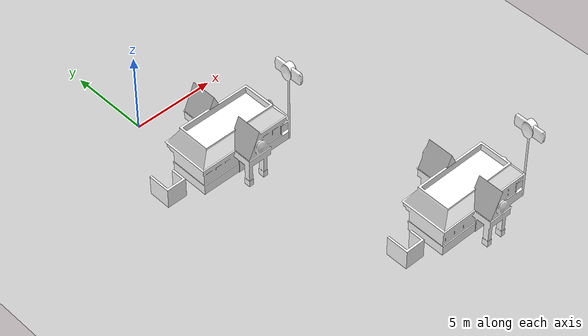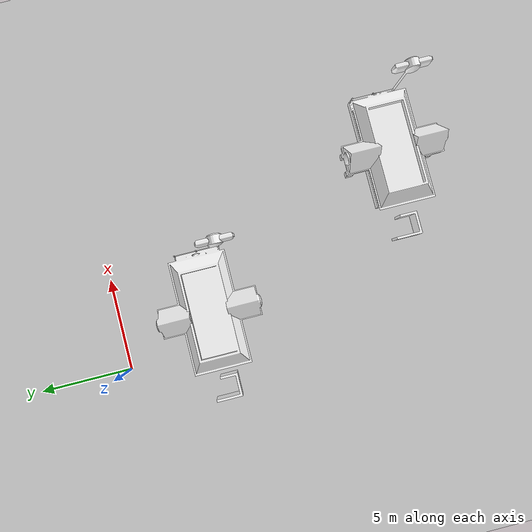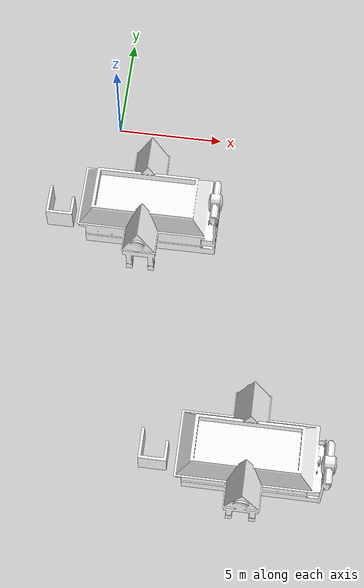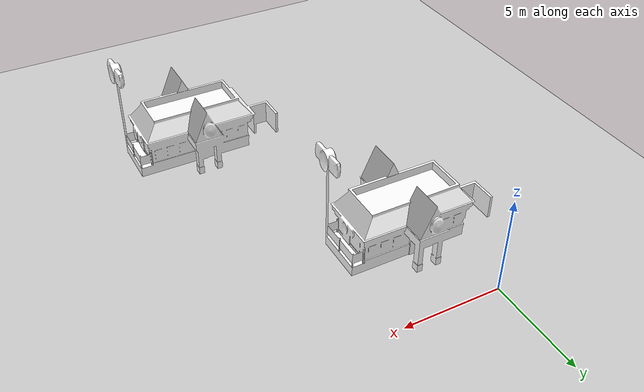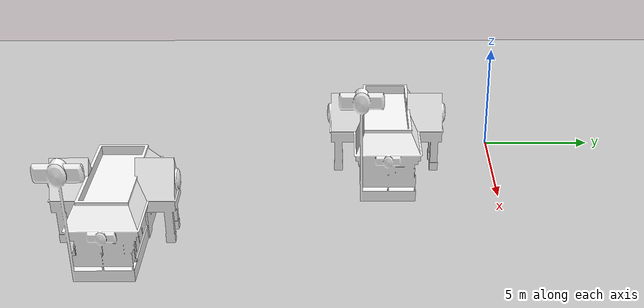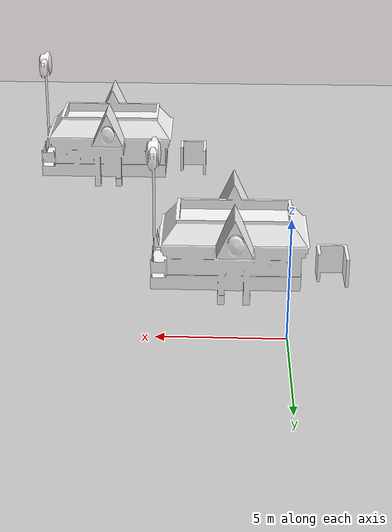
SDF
<sdf version="1.4">
 <world name="default">
  <model name="ground_plane">
   <static>1</static>
   <link name="link">
    <collision name="collision">
     <geometry><plane><normal>0 0 1</normal><size>100 100</size></plane></geometry>
     <surface><friction><ode><mu>100</mu><mu2>50</mu2></ode></friction></surface>
    </collision>
    <visual name="visual">
     <cast_shadows>0</cast_shadows>
     <geometry><plane><normal>0 0 1</normal><size>100 100</size></plane></geometry>
     <material>
      <script><uri>file://media/materials/scripts/gazebo.material</uri><name>Gazebo/Grey</name></script>
     </material>
    </visual>
    <velocity_decay><linear>0</linear><angular>0</angular></velocity_decay>
   </link>
  </model>
  <model name="Fast Food_0">
   <static>1</static>
   <link name="link">
    <pose>0 0 1.57966 0 -0 0</pose>
    <collision name="collision">
     <geometry><mesh><uri>model://fast_food/meshes/fast_food.dae</uri></mesh></geometry>
    </collision>
    <visual name="visual">
     <geometry><mesh><uri>model://fast_food/meshes/fast_food.dae</uri></mesh></geometry>
     <material>
      <script>
       <uri>model://fast_food/materials/scripts</uri>
       <uri>model://fast_food/materials/textures</uri>
       <name>FastFood/Diffuse</name>
      </script>
      <shader type="normal_map_object_space"><normal_map>FastFood_Normal.tga</normal_map></shader>
     </material>
    </visual>
    <velocity_decay><linear>0</linear><angular>0</angular></velocity_decay>
   </link>
   <pose>2 -5 0 0 -0 0</pose>
  </model>
  <model name="Fast Food_1">
   <static>1</static>
   <link name="link">
    <pose>0 0 1.57966 0 -0 0</pose>
    <collision name="collision">
     <geometry><mesh><uri>model://fast_food/meshes/fast_food.dae</uri></mesh></geometry>
    </collision>
    <visual name="visual">
     <geometry><mesh><uri>model://fast_food/meshes/fast_food.dae</uri></mesh></geometry>
     <material>
      <script>
       <uri>model://fast_food/materials/scripts</uri>
       <uri>model://fast_food/materials/textures</uri>
       <name>FastFood/Diffuse</name>
      </script>
      <shader type="normal_map_object_space"><normal_map>FastFood_Normal.tga</normal_map></shader>
     </material>
    </visual>
    <velocity_decay><linear>0</linear><angular>0</angular></velocity_decay>
   </link>
   <pose>8 -16.498 0 0 -0 0</pose>
  </model>
 </world>
</sdf>
